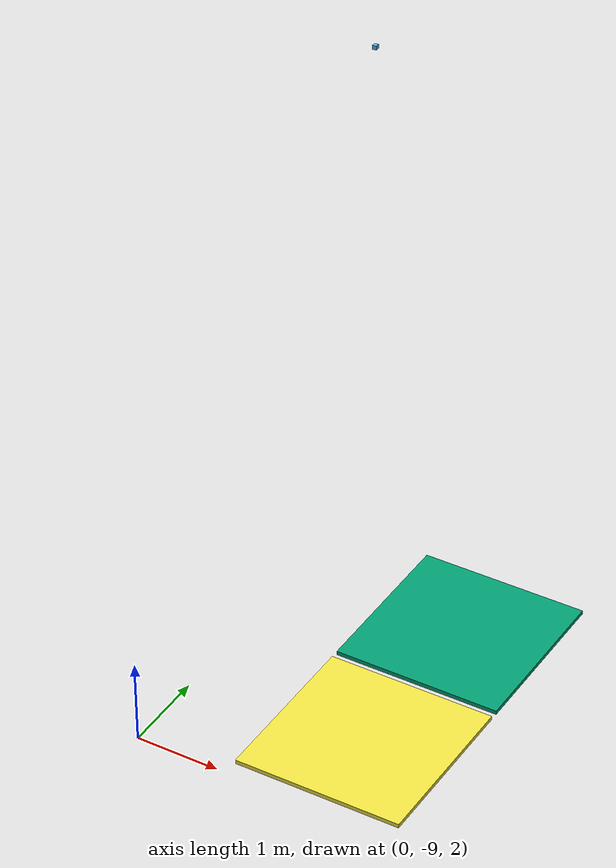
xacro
<?xml version="1.0"?>
<robot name="float_camera" xmlns:xacro="http://ros.org/wiki/xacro">>

	<xacro:property name="M_PI" value="3.1415926535897931" />
	<xacro:property name="camera_size" value="0.05" />
	<xacro:property name="video_size" value="2" />

	<xacro:macro name="float_video" params="name topic">

		<!-- Video Link-->
		<link name="${name}">
			<collision>
				<geometry>
					<box size="${video_size} ${video_size} 0.05"/>
				</geometry>
			</collision>

			<visual>
				<geometry>
					<box size="${video_size} ${video_size} 0.05"/>
				</geometry>
			</visual>

			<inertial>
				<mass value="1e-5" />
				<inertia ixx="1e-6" ixy="0" ixz="0" iyy="1e-6" iyz="0" izz="1e-6" />
			</inertial>
		</link>

		<!-- Video -->
		<gazebo reference="${name}">
			<visual>
				<plugin name="video_${name}" filename="libgazebo_ros_video.so">
					<robotNamespace>${name}</robotNamespace>
					<topicName>${topic}</topicName>
					<height>480</height>
					<width>480</width>
				</plugin>
			</visual>
		</gazebo>
	</xacro:macro>

	<xacro:macro name="float_camera" params="name topic">

		<!-- Camera Link-->
		<link name="${name}">
			<collision>
				<geometry>
					<box size="${camera_size} ${camera_size} ${camera_size}"/>
				</geometry>
			</collision>

			<visual>
				<geometry>
					<box size="${camera_size} ${camera_size} ${camera_size}"/>
				</geometry>
			</visual>

			<inertial>
				<mass value="1e-5" />
				<inertia ixx="1e-6" ixy="0" ixz="0" iyy="1e-6" iyz="0" izz="1e-6" />
			</inertial>
		</link>

		<!-- Camera -->
		<gazebo reference="${name}">
			<sensor type="camera" name="${name}">
				<update_rate>30.0</update_rate>
				<camera name="${name}">
					<horizontal_fov>${M_PI/2}</horizontal_fov>
					<image>
						<width>640</width>
						<height>480</height>
						<format>R8G8B8</format>
					</image>
					<clip>
						<near>0.01</near>
						<far>100</far>
					</clip>
				</camera>
				<plugin name="camera_controller_${name}" filename="libgazebo_ros_camera.so">
					<alwaysOn>true</alwaysOn>
					<updateRate>0.0</updateRate>
					<cameraName>${name}</cameraName>
					<imageTopicName>${topic}</imageTopicName>
					<cameraInfoTopicName>camera_info</cameraInfoTopicName>
					<frameName>${name}</frameName>
					<hackBaseline>0.07</hackBaseline>
					<distortionK1>0.0</distortionK1>
					<distortionK2>0.0</distortionK2>
					<distortionK3>0.0</distortionK3>
					<distortionT1>0.0</distortionT1>
					<distortionT2>0.0</distortionT2>
				</plugin>
			</sensor>
		</gazebo>
	</xacro:macro>

	<link name="world"/>

	<joint name="float_camera_joint" type="fixed">
		<origin xyz="0 -4 8" rpy="0 ${M_PI/2} 0"/>
		<parent link="world"/>
		<child link="float_camera"/>
	</joint>

	<joint name="float_rgb_video_joint" type="fixed">
		<origin xyz="2.1 -5.7 2" rpy="0 0 ${-M_PI/2}"/>
		<parent link="world"/>
		<child link="float_rgb_video"/>
	</joint>

	<joint name="float_depth_video_joint" type="fixed">
		<origin xyz="2.1 -7.8 2" rpy="0 0 ${-M_PI/2}"/>
		<parent link="world"/>
		<child link="float_depth_video"/>
	</joint>

	<float_camera name="float_camera" topic="image_raw"/>
	<float_video name="float_rgb_video"   topic="/camera/rgb/image_raw"/>
	<float_video name="float_depth_video" topic="/camera/depth/image_raw"/>

</robot>
